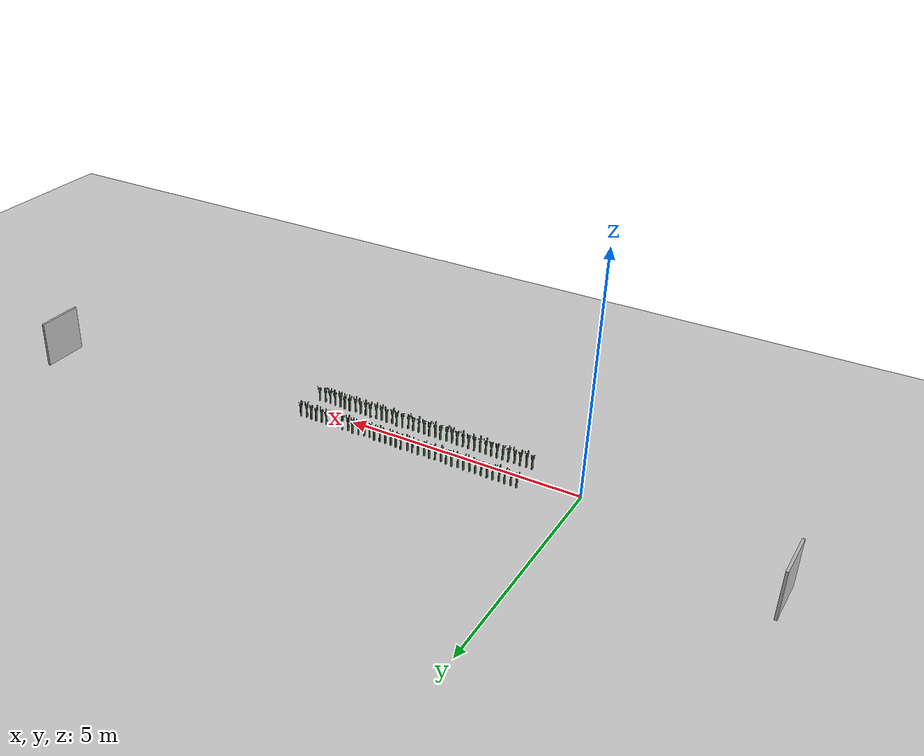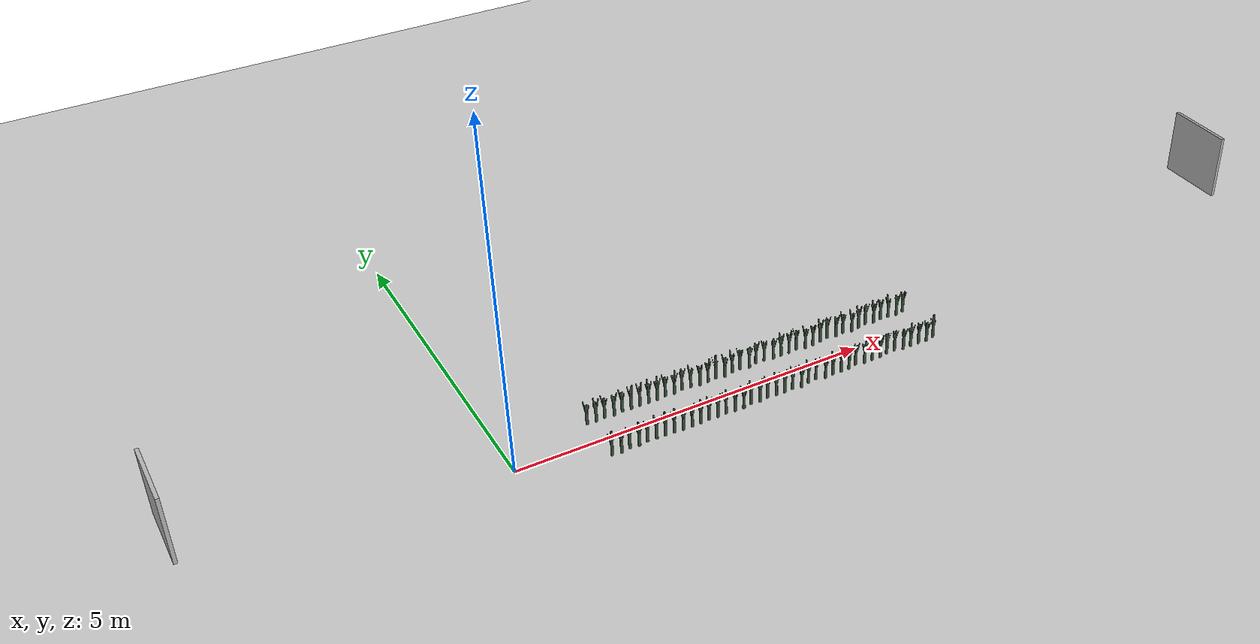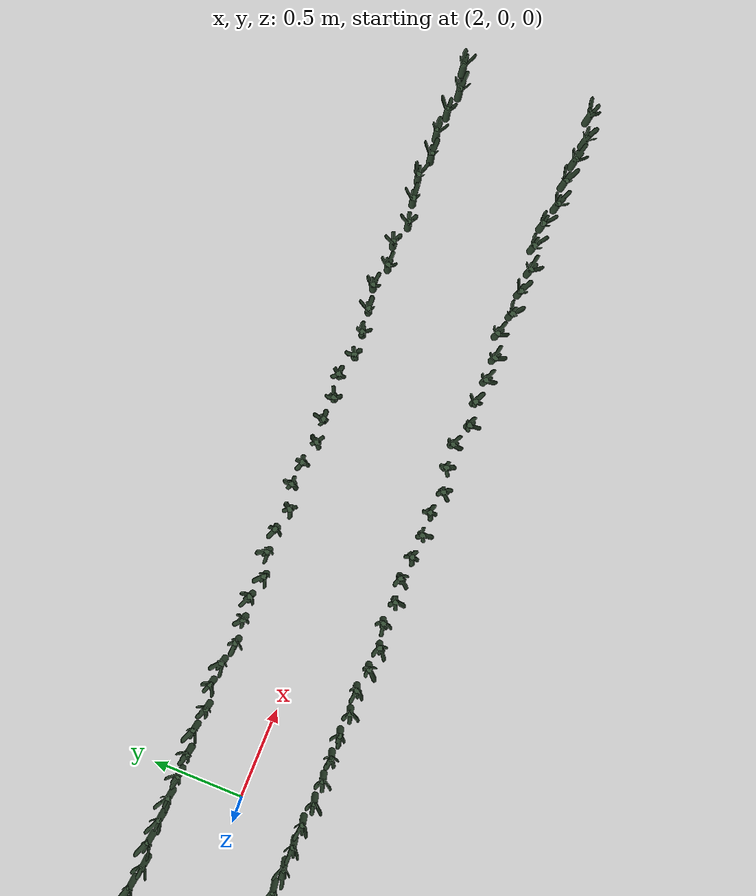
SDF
<sdf version="1.6">
 <world name="default">
  <light name="sun" type="directional">
   <pose>0 0 10 0 -0 0</pose>
   <diffuse>0.8 0.8 0.8 1</diffuse>
   <specular>0.1 0.1 0.1 1</specular>
   <attenuation>
    <range>1000</range>
    <constant>0.9</constant>
    <linear>0.01</linear>
    <quadratic>0.001</quadratic>
   </attenuation>
   <direction>0.9 0.5 -1</direction>
  </light>
  <include><uri>model://Sign</uri><pose>12 1 0 0 0 0</pose><static>1</static></include>
  <include><uri>model://Sign</uri><pose>-4 1 0 0 0 0</pose><static>1</static></include>
  <include><uri>model://dirt_plane</uri></include>
  <scene><background>160 210 255 1</background><ambient>100 100 100 1</ambient></scene>
  <include><uri>model://Leek</uri><pose>1.153770 0.362669 0.15 0 0 2.280408</pose><static>0</static></include>
  <include><uri>model://Leek</uri><pose>1.278770 0.350805 0.15 0 0 0.144826</pose><static>0</static></include>
  <include><uri>model://Leek</uri><pose>1.403770 0.363946 0.15 0 0 2.510228</pose><static>0</static></include>
  <include><uri>model://Leek</uri><pose>1.528770 0.341340 0.15 0 0 -1.558883</pose><static>0</static></include>
  <include><uri>model://Leek</uri><pose>1.653770 0.363309 0.15 0 0 2.395588</pose><static>0</static></include>
  <include><uri>model://Leek</uri><pose>1.778770 0.354115 0.15 0 0 0.740762</pose><static>0</static></include>
  <include><uri>model://Leek</uri><pose>1.903770 0.352847 0.15 0 0 0.512430</pose><static>0</static></include>
  <include><uri>model://Leek</uri><pose>2.028770 0.348809 0.15 0 0 -0.214465</pose><static>0</static></include>
  <include><uri>model://Leek</uri><pose>2.153770 0.347289 0.15 0 0 -0.487959</pose><static>0</static></include>
  <include><uri>model://Leek</uri><pose>2.278770 0.364050 0.15 0 0 2.528919</pose><static>0</static></include>
  <include><uri>model://Leek</uri><pose>2.403770 0.346052 0.15 0 0 -0.710709</pose><static>0</static></include>
  <include><uri>model://Leek</uri><pose>2.528770 0.373698 0.15 0 0 4.265551</pose><static>0</static></include>
  <include><uri>model://Leek</uri><pose>2.653770 0.361136 0.15 0 0 2.004478</pose><static>0</static></include>
  <include><uri>model://Leek</uri><pose>2.778770 0.333205 0.15 0 0 -3.023084</pose><static>0</static></include>
  <include><uri>model://Leek</uri><pose>2.903770 0.344200 0.15 0 0 -1.044034</pose><static>0</static></include>
  <include><uri>model://Leek</uri><pose>3.028770 0.355873 0.15 0 0 1.057100</pose><static>0</static></include>
  <include><uri>model://Leek</uri><pose>3.153770 0.327389 0.15 0 0 -4.069994</pose><static>0</static></include>
  <include><uri>model://Leek</uri><pose>3.278770 0.360168 0.15 0 0 1.830151</pose><static>0</static></include>
  <include><uri>model://Leek</uri><pose>3.403770 0.366061 0.15 0 0 2.891012</pose><static>0</static></include>
  <include><uri>model://Leek</uri><pose>3.528770 0.336085 0.15 0 0 -2.504702</pose><static>0</static></include>
  <include><uri>model://Leek</uri><pose>3.653770 0.374836 0.15 0 0 4.470537</pose><static>0</static></include>
  <include><uri>model://Leek</uri><pose>3.778770 0.366811 0.15 0 0 3.026060</pose><static>0</static></include>
  <include><uri>model://Leek</uri><pose>3.903770 0.337178 0.15 0 0 -2.308024</pose><static>0</static></include>
  <include><uri>model://Leek</uri><pose>4.028770 0.349454 0.15 0 0 -0.098314</pose><static>0</static></include>
  <include><uri>model://Leek</uri><pose>4.153770 0.342760 0.15 0 0 -1.303264</pose><static>0</static></include>
  <include><uri>model://Leek</uri><pose>4.278770 0.365029 0.15 0 0 2.705269</pose><static>0</static></include>
  <include><uri>model://Leek</uri><pose>4.403770 0.326941 0.15 0 0 -4.150619</pose><static>0</static></include>
  <include><uri>model://Leek</uri><pose>4.528770 0.333427 0.15 0 0 -2.983198</pose><static>0</static></include>
  <include><uri>model://Leek</uri><pose>4.653770 0.349587 0.15 0 0 -0.074307</pose><static>0</static></include>
  <include><uri>model://Leek</uri><pose>4.778770 0.373967 0.15 0 0 4.314021</pose><static>0</static></include>
  <include><uri>model://Leek</uri><pose>4.903770 0.340140 0.15 0 0 -1.774832</pose><static>0</static></include>
  <include><uri>model://Leek</uri><pose>5.028770 0.361450 0.15 0 0 2.061086</pose><static>0</static></include>
  <include><uri>model://Leek</uri><pose>5.153770 0.325869 0.15 0 0 -4.343506</pose><static>0</static></include>
  <include><uri>model://Leek</uri><pose>5.278770 0.350071 0.15 0 0 0.012758</pose><static>0</static></include>
  <include><uri>model://Leek</uri><pose>5.403770 0.371427 0.15 0 0 3.856783</pose><static>0</static></include>
  <include><uri>model://Leek</uri><pose>5.528770 0.348960 0.15 0 0 -0.187168</pose><static>0</static></include>
  <include><uri>model://Leek</uri><pose>5.653770 0.367484 0.15 0 0 3.147171</pose><static>0</static></include>
  <include><uri>model://Leek</uri><pose>5.778770 0.358273 0.15 0 0 1.489067</pose><static>0</static></include>
  <include><uri>model://Leek</uri><pose>5.903770 0.339661 0.15 0 0 -1.860960</pose><static>0</static></include>
  <include><uri>model://Leek</uri><pose>6.028770 0.368908 0.15 0 0 3.403504</pose><static>0</static></include>
  <include><uri>model://Leek</uri><pose>1.162198 -0.343997 0.15 0 0 1.080567</pose><static>0</static></include>
  <include><uri>model://Leek</uri><pose>1.287198 -0.358616 0.15 0 0 -1.550893</pose><static>0</static></include>
  <include><uri>model://Leek</uri><pose>1.412198 -0.333482 0.15 0 0 2.973157</pose><static>0</static></include>
  <include><uri>model://Leek</uri><pose>1.537198 -0.352245 0.15 0 0 -0.404141</pose><static>0</static></include>
  <include><uri>model://Leek</uri><pose>1.662198 -0.332416 0.15 0 0 3.165074</pose><static>0</static></include>
  <include><uri>model://Leek</uri><pose>1.787198 -0.339535 0.15 0 0 1.883681</pose><static>0</static></include>
  <include><uri>model://Leek</uri><pose>1.912198 -0.343114 0.15 0 0 1.239438</pose><static>0</static></include>
  <include><uri>model://Leek</uri><pose>2.037198 -0.344311 0.15 0 0 1.024089</pose><static>0</static></include>
  <include><uri>model://Leek</uri><pose>2.162198 -0.358181 0.15 0 0 -1.472593</pose><static>0</static></include>
  <include><uri>model://Leek</uri><pose>2.287198 -0.356758 0.15 0 0 -1.216408</pose><static>0</static></include>
  <include><uri>model://Leek</uri><pose>2.412198 -0.353159 0.15 0 0 -0.568560</pose><static>0</static></include>
  <include><uri>model://Leek</uri><pose>2.537198 -0.349702 0.15 0 0 0.053623</pose><static>0</static></include>
  <include><uri>model://Leek</uri><pose>2.662198 -0.356933 0.15 0 0 -1.248008</pose><static>0</static></include>
  <include><uri>model://Leek</uri><pose>2.787198 -0.343770 0.15 0 0 1.121352</pose><static>0</static></include>
  <include><uri>model://Leek</uri><pose>2.912198 -0.361325 0.15 0 0 -2.038489</pose><static>0</static></include>
  <include><uri>model://Leek</uri><pose>3.037198 -0.371980 0.15 0 0 -3.956433</pose><static>0</static></include>
  <include><uri>model://Leek</uri><pose>3.162198 -0.341329 0.15 0 0 1.560700</pose><static>0</static></include>
  <include><uri>model://Leek</uri><pose>3.287198 -0.357028 0.15 0 0 -1.264963</pose><static>0</static></include>
  <include><uri>model://Leek</uri><pose>3.412198 -0.336309 0.15 0 0 2.464302</pose><static>0</static></include>
  <include><uri>model://Leek</uri><pose>3.537198 -0.349907 0.15 0 0 0.016715</pose><static>0</static></include>
  <include><uri>model://Leek</uri><pose>3.662198 -0.356846 0.15 0 0 -1.232288</pose><static>0</static></include>
  <include><uri>model://Leek</uri><pose>3.787198 -0.349487 0.15 0 0 0.092280</pose><static>0</static></include>
  <include><uri>model://Leek</uri><pose>3.912198 -0.372929 0.15 0 0 -4.127247</pose><static>0</static></include>
  <include><uri>model://Leek</uri><pose>4.037198 -0.340122 0.15 0 0 1.777967</pose><static>0</static></include>
  <include><uri>model://Leek</uri><pose>4.162198 -0.325842 0.15 0 0 4.348353</pose><static>0</static></include>
  <include><uri>model://Leek</uri><pose>4.287198 -0.368716 0.15 0 0 -3.368957</pose><static>0</static></include>
  <include><uri>model://Leek</uri><pose>4.412198 -0.351672 0.15 0 0 -0.300982</pose><static>0</static></include>
  <include><uri>model://Leek</uri><pose>4.537198 -0.360309 0.15 0 0 -1.855643</pose><static>0</static></include>
  <include><uri>model://Leek</uri><pose>4.662198 -0.358853 0.15 0 0 -1.593556</pose><static>0</static></include>
  <include><uri>model://Leek</uri><pose>4.787198 -0.325327 0.15 0 0 4.441052</pose><static>0</static></include>
  <include><uri>model://Leek</uri><pose>4.912198 -0.355504 0.15 0 0 -0.990718</pose><static>0</static></include>
  <include><uri>model://Leek</uri><pose>5.037198 -0.353093 0.15 0 0 -0.556733</pose><static>0</static></include>
  <include><uri>model://Leek</uri><pose>5.162198 -0.358963 0.15 0 0 -1.613341</pose><static>0</static></include>
  <include><uri>model://Leek</uri><pose>5.287198 -0.329276 0.15 0 0 3.730232</pose><static>0</static></include>
  <include><uri>model://Leek</uri><pose>5.412198 -0.330216 0.15 0 0 3.561189</pose><static>0</static></include>
  <include><uri>model://Leek</uri><pose>5.537198 -0.362077 0.15 0 0 -2.173844</pose><static>0</static></include>
  <include><uri>model://Leek</uri><pose>5.662198 -0.354148 0.15 0 0 -0.746559</pose><static>0</static></include>
  <include><uri>model://Leek</uri><pose>5.787198 -0.360627 0.15 0 0 -1.912862</pose><static>0</static></include>
  <include><uri>model://Leek</uri><pose>5.912198 -0.372325 0.15 0 0 -4.018552</pose><static>0</static></include>
  <include><uri>model://Leek</uri><pose>6.037198 -0.344864 0.15 0 0 0.924550</pose><static>0</static></include>
 </world>
</sdf>

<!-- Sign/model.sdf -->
<sdf version='1.6'>
  <model name='Sign'>
    <link name='link'>
      <pose frame=''>0 0 0 0 -0 0</pose>
      <inertial>
        <mass>1</mass>
        <inertia>
          <ixx>0.166667</ixx>
          <ixy>0</ixy>
          <ixz>0</ixz>
          <iyy>0.166667</iyy>
          <iyz>0</iyz>
          <izz>0.166667</izz>
        </inertia>
        <pose frame=''>0 0 0 0 -0 0</pose>
      </inertial>
      <self_collide>0</self_collide>
      <kinematic>0</kinematic>
      <gravity>1</gravity>
      <visual name='visual'>
        <geometry>
          <box>
            <size>1 0.05 1</size>
          </box>
        </geometry>
        <material>
          <script>
            <uri>model://ground_plane/materials/scripts/my_ground_plane.material</uri>
            <uri>model://ground_plane/materials/textures</uri>
            <name>my_ground_plane/NaioLogo</name>
          </script>
        </material>
        <pose frame=''>0 0 0.5 0 -0 1.57</pose>
        <cast_shadows>1</cast_shadows>
        <transparency>0</transparency>
      </visual>
    </link>
    <static>1</static>
    <allow_auto_disable>1</allow_auto_disable>
  </model>
</sdf>

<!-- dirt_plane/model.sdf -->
<sdf version="1.4">
<model name="dirt_plane">
  <static>true</static>
    <link name="link">
      <collision name="collision">
        <geometry>
          <plane>
            <normal>0 0 1</normal>
            <size>100 100</size>
          </plane>
        </geometry>
        <surface>
          <friction>
            <ode>
              <mu>100</mu>
              <mu2>50</mu2>
            </ode>
          </friction>
        </surface>
      </collision>
      <visual name="visual">
        <cast_shadows>false</cast_shadows>
        <geometry>
          <plane>
            <normal>0 0 1</normal>
            <size>100 100</size>
          </plane>
        </geometry>
        <material>
          <script>
            <uri>model://ground_plane/materials/scripts/my_ground_plane.material</uri>
            <uri>model://ground_plane/materials/textures</uri>
            <name>my_ground_plane/Dirt</name>
          </script>
        </material>
      </visual>
    </link>
  </model>
</sdf>

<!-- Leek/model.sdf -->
<sdf version='1.6'>
  <model name='Leek'>
    <link name='link'>
      <pose frame=''>0 0 0 0 -0 0</pose>
      <inertial>
        <mass>1</mass>
        <inertia>
          <ixx>0.145833</ixx>
          <ixy>0</ixy>
          <ixz>0</ixz>
          <iyy>0.145833</iyy>
          <iyz>0</iyz>
          <izz>0.125</izz>
        </inertia>
        <pose frame=''>0 0 0 0 -0 0</pose>
      </inertial>
      <self_collide>0</self_collide>
      <kinematic>0</kinematic>
      <gravity>1</gravity>
      <visual name='visual'>
        <geometry>
          <mesh>
            <uri>model://Leek/Poireau.dae</uri>
            <scale>1 1 1</scale>
          </mesh>
        </geometry>
        <material>
          <script>
            <name>Gazebo/Grey</name>
            <uri>file://media/materials/scripts/gazebo.material</uri>
          </script>
          <ambient>0.3 0.7 0.4 0</ambient>
          <diffuse>0.2 0.3 0.2 0</diffuse>
          <specular>0 0 0 1</specular>
          <emissive>0 0 0 1</emissive>
          <shader type='vertex'>
            <normal_map>__default__</normal_map>
          </shader>
        </material>
        <pose frame=''>0 0 -0.08 0 -0 0</pose>
        <cast_shadows>1</cast_shadows>
        <transparency>0</transparency>
      </visual>
      <collision name='collision'>
        <laser_retro>0</laser_retro>
        <max_contacts>10</max_contacts>
        <pose frame=''>0 0 0 0 -0 0</pose>
        <geometry>
          <cylinder>
            <radius>0.02</radius>
            <length>0.25</length>
          </cylinder>
        </geometry>
        <surface>
          <friction>
            <ode>
              <mu>1</mu>
              <mu2>1</mu2>
              <fdir1>0 0 0</fdir1>
              <slip1>0</slip1>
              <slip2>0</slip2>
            </ode>
            <torsional>
              <coefficient>1</coefficient>
              <patch_radius>0</patch_radius>
              <surface_radius>0</surface_radius>
              <use_patch_radius>1</use_patch_radius>
              <ode>
                <slip>0</slip>
              </ode>
            </torsional>
          </friction>
          <bounce>
            <restitution_coefficient>0</restitution_coefficient>
            <threshold>1e+06</threshold>
          </bounce>
          <contact>
            <collide_without_contact>0</collide_without_contact>
            <collide_without_contact_bitmask>1</collide_without_contact_bitmask>
            <collide_bitmask>1</collide_bitmask>
            <ode>
              <soft_cfm>0</soft_cfm>
              <soft_erp>0.2</soft_erp>
              <kp>1e+13</kp>
              <kd>1</kd>
              <max_vel>0.01</max_vel>
              <min_depth>0</min_depth>
            </ode>
            <bullet>
              <split_impulse>1</split_impulse>
              <split_impulse_penetration_threshold>-0.01</split_impulse_penetration_threshold>
              <soft_cfm>0</soft_cfm>
              <soft_erp>0.2</soft_erp>
              <kp>1e+13</kp>
              <kd>1</kd>
            </bullet>
          </contact>
        </surface>
      </collision>
    </link>
    <static>0</static>
    <allow_auto_disable>1</allow_auto_disable>
  </model>
</sdf>
